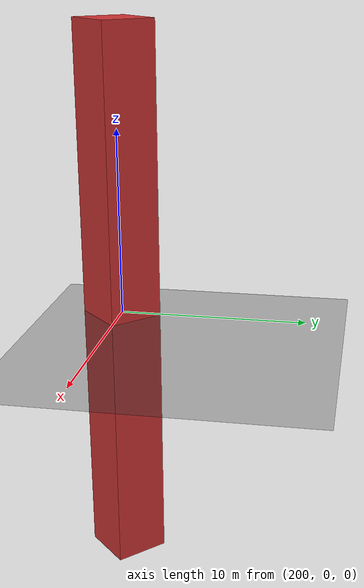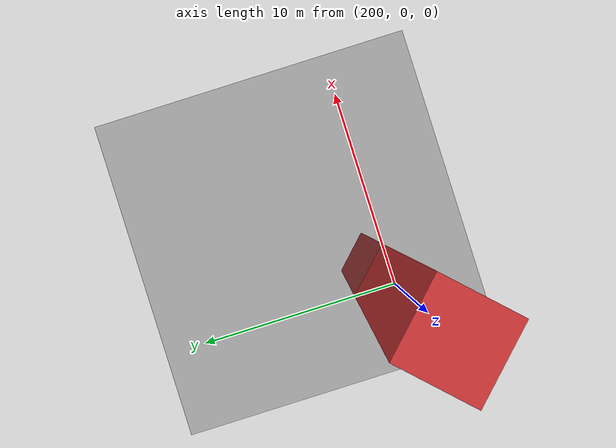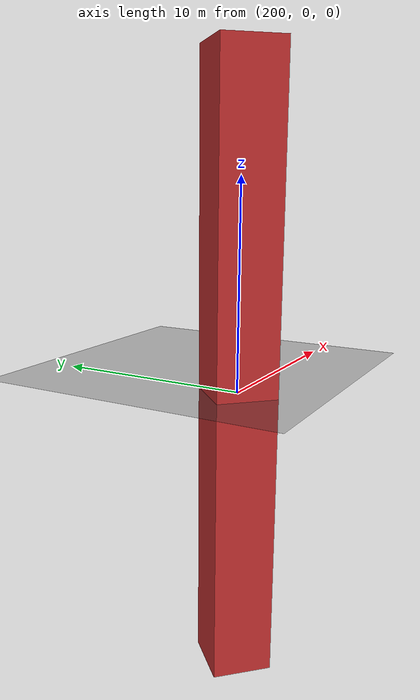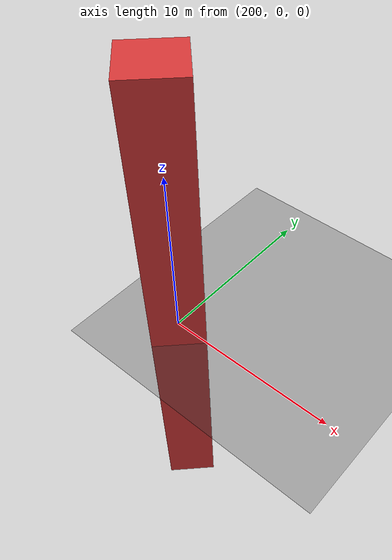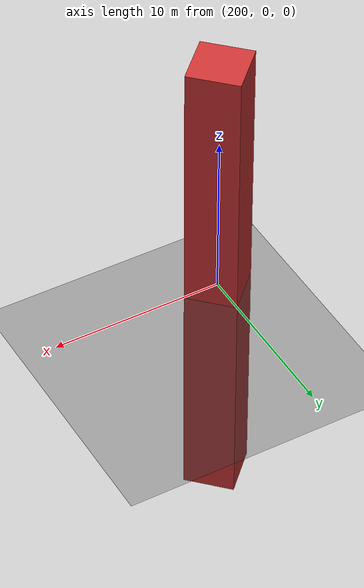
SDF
<?xml version="1.0"?>
<sdf version="1.9">
  <world name="parallelogram">
    <physics type="ode">
      <max_step_size>0.004</max_step_size>
      <real_time_factor>1.0</real_time_factor>
      <real_time_update_rate>250</real_time_update_rate>
    </physics>

    <gravity>0 0 -9.8</gravity>
    <magnetic_field>6e-06 2.3e-05 -4.2e-05</magnetic_field>
    <atmosphere type="adiabatic"/>

    <scene>
      <grid>false</grid>
      <ambient>0.4 0.4 0.4 1</ambient>
      <background>0.7 0.7 0.7 1</background>
      <shadows>true</shadows>
    </scene>

    <light name="sun" type="directional">
      <pose>0 0 20 0 0 0</pose>
      <cast_shadows>true</cast_shadows>
      <diffuse>0.8 0.8 0.8 1</diffuse>
      <specular>0.2 0.2 0.2 1</specular>
      <direction>-0.5 0.1 -0.9</direction>
    </light>

    <model name="ground_plane">
      <static>true</static>
      <link name="link">
        <collision name="collision">
          <geometry>
            <plane>
              <normal>0 0 1</normal>
              <size>200 200</size>
            </plane>
          </geometry>
        </collision>
        <visual name="visual">
          <geometry>
            <plane>
              <normal>0 0 1</normal>
              <size>200 200</size>
            </plane>
          </geometry>
          <material>
            <ambient>0.2 0.2 0.2 1</ambient>
            <diffuse>0.2 0.2 0.2 1</diffuse>
            <specular>0.1 0.1 0.1 1</specular>
          </material>
        </visual>
      </link>
    </model>

    <model name="parallelogram_obstacle">
      <static>true</static>
      <pose>200 0 0.5 0 0 0.7853981634</pose>
      <link name="link">
        <collision name="collision">
          <geometry>
            <box>
              <size>3 3 30</size>
            </box>
          </geometry>
        </collision>
        <visual name="visual">
          <geometry>
            <box>
              <size>3 3 30</size>
            </box>
          </geometry>
          <material>
            <ambient>0.8 0.2 0.2 1</ambient>
            <diffuse>0.8 0.2 0.2 1</diffuse>
            <specular>0.2 0.2 0.2 1</specular>
          </material>
        </visual>
      </link>
    </model>

    <spherical_coordinates>
      <surface_model>EARTH_WGS84</surface_model>
      <world_frame_orientation>ENU</world_frame_orientation>
      <latitude_deg>47.397971057728974</latitude_deg>
      <longitude_deg>8.546163739800146</longitude_deg>
      <elevation>0</elevation>
    </spherical_coordinates>
  </world>
</sdf>
